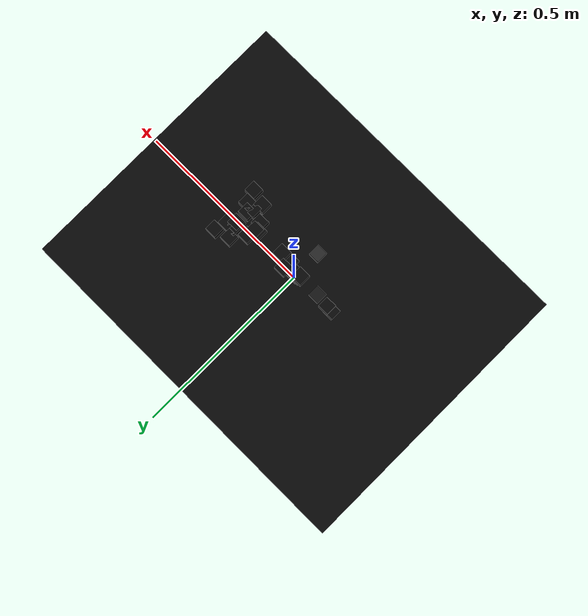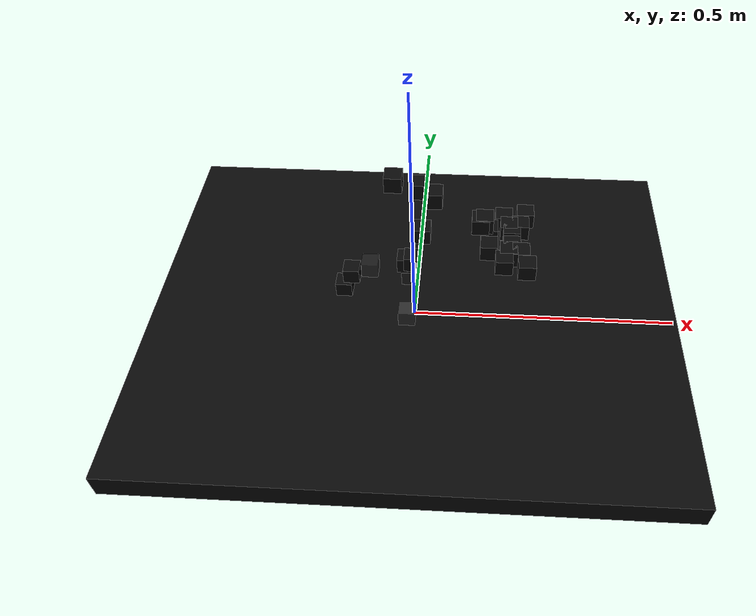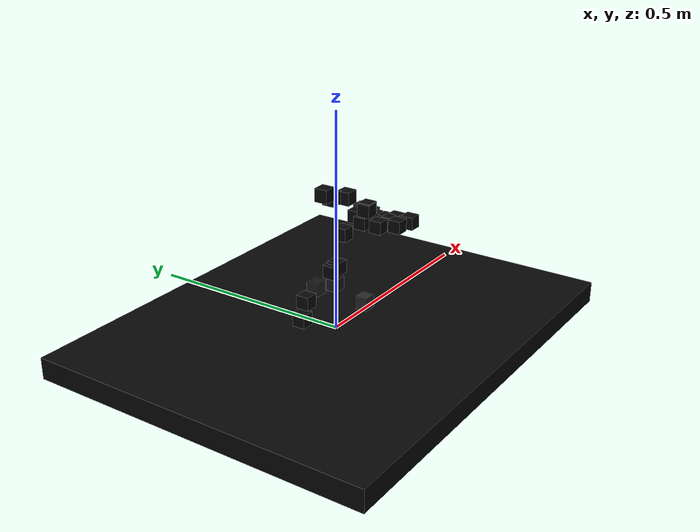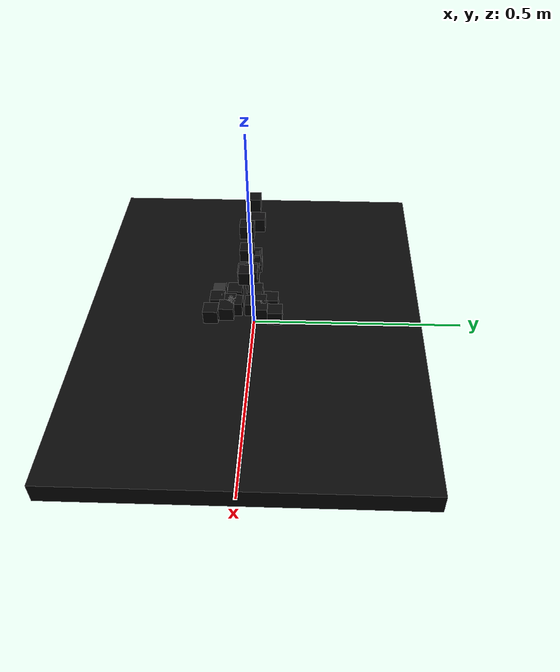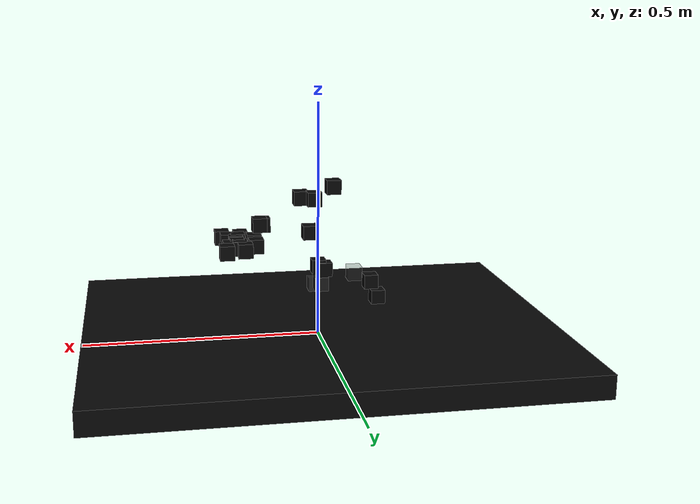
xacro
<?xml version="1.0"?>
<robot name="ep_novis" xmlns:xacro="http://playerstage.sourceforge.net/gazebo/xmlschema/#xacro">
  <xacro:arg name="config_path" default=""/>

  <!-- ================= 材料（官方配色） ================= -->
  <material name="armor_plastic"><color rgba="0.2277128 0.2277128 0.2277128 0.8"/></material>
  <material name="chassis"><color rgba="0.0981132 0.0981132 0.0981132 1.0"/></material>
  <material name="cover_plastic"><color rgba="0.2548322 0.2548322 0.2548322 0.3"/></material>
  <material name="dark_plastic"><color rgba="0.0281746 0.0281746 0.0281746 1.0"/></material>
  <material name="metal"><color rgba="0.0281746 0.028 0.0281746 1.0"/></material>
  <material name="EP_up.001"><color rgba="0.0284811 0.0284811 0.0284811 1.0"/></material>

  <!-- ================= 世界与桌面 ================= -->
  <link name="world"/>
  <link name="table_link">
    <inertial><mass value="10"/><inertia ixx="1" ixy="0" ixz="0" iyy="1" iyz="0" izz="1"/></inertial>
    <visual><geometry><box size="1.0 0.8 0.05"/></geometry><material name="dark_plastic"/></visual>
    <collision><geometry><box size="1.0 0.8 0.05"/></geometry></collision>
  </link>
  <joint name="table_joint" type="fixed">
    <parent link="world"/><child link="table_link"/><origin xyz="0 0 0" rpy="0 0 0"/>
  </joint>

  <!-- ================= EP 底盘（底盘回转关节） ================= -->
  <joint name="chassis_yaw_joint" type="continuous">
    <parent link="table_link"/><child link="base_link"/>
    <origin xyz="0 0 0.025" rpy="0 0 0"/><axis xyz="0 0 1"/>
    <limit effort="4" velocity="3.14"/><dynamics damping="1.0"/>
  </joint>
  <link name="base_link"/>

  <link name="chassis_base_link">
    <inertial>
      <origin xyz="-0.0058789 -0.0001128 0.0294307" rpy="0 0 0"/>
      <mass value="1.934"/>
      <inertia ixx="0.01451" ixy="0" ixz="0" iyy="0.00512" iyz="0" izz="0.01759"/>
    </inertial>
    <visual name="armor">
      <origin xyz="-0.0064553 -0.078141 0.0292877" rpy="0 0 0"/>
      <geometry><box size="0.03 0.03 0.03"/></geometry>
      <material name="armor_plastic"/>
    </visual>
    <visual name="battery">
      <origin xyz="-0.130336 -0.0018702 0.0174177" rpy="0 0 0"/>
      <geometry><box size="0.03 0.03 0.03"/></geometry>
      <material name="dark_plastic"/>
    </visual>
    <visual name="chassis">
      <origin xyz="-0.0059039 0.0004154 0.0527955" rpy="0 0 0"/>
      <geometry><box size="0.03 0.03 0.03"/></geometry>
      <material name="chassis"/>
    </visual>
    <visual name="controller">
      <origin xyz="-0.1142288 -0.0006716 0.052675" rpy="0 0 0"/>
      <geometry><box size="0.03 0.03 0.03"/></geometry>
      <material name="dark_plastic"/>
    </visual>
    <visual name="controller_cover">
      <origin xyz="-0.0787757 -0.002522 0.0720827" rpy="0 0 0"/>
      <geometry><box size="0.03 0.03 0.03"/></geometry>
      <material name="cover_plastic"/>
    </visual>
    <collision name="base_collision">
      <origin xyz="-0.0058789 -0.0001128 0.0294307" rpy="0 0 0"/>
      <geometry><mesh filename="package://robomaster_description/meshes/base_collision.dae" scale="1.0 1.0 1.0"/></geometry>
    </collision>
  </link>
  <joint name="chassis_base_joint" type="fixed">
    <origin xyz="0 0 0.03465" rpy="0 0 0"/>
    <parent link="base_link"/><child link="chassis_base_link"/>
  </joint>

  <!-- ================= 臂基座（官方原点） ================= -->
  <joint name="arm_base_joint" type="fixed">
    <origin xyz="0 0.0010384 0.0906477" rpy="0 0 0"/>
    <parent link="chassis_base_link"/><child link="arm_base_link"/>
  </joint>
  <link name="arm_base_link">
    <inertial>
      <origin xyz="0 0 0" rpy="0 0 0"/><mass value="0.3"/>
      <inertia ixx="0.0023" ixy="0" ixz="0" iyy="0.0025" iyz="0" izz="0.00072"/>
    </inertial>
    <visual name="arm_base">
      <origin xyz="-0.0008983 -0.0029745 -2.44e-05" rpy="0 0 0"/>
      <geometry><box size="0.03 0.03 0.03"/></geometry>
      <material name="metal"/>
    </visual>
    <visual name="left_servo">
      <origin xyz="-0.013507 0 -0.0060673" rpy="0 0 0"/>
      <geometry><box size="0.03 0.03 0.03"/></geometry>
      <material name="metal"/>
    </visual>
    <visual name="right_servo">
      <origin xyz="-0.013507 0 -0.0060673" rpy="0 0 0"/>
      <geometry><box size="0.03 0.03 0.03"/></geometry>
      <material name="metal"/>
    </visual>
    <collision name="arm_base_collision">
      <origin xyz="-0.002098 -0.0004909 0.0073523" rpy="0 0 0"/>
      <geometry><mesh filename="package://robomaster_description/meshes/arm_base_collision.dae" scale="1.0 1.0 1.0"/></geometry>
    </collision>
  </link>

  <!-- ================= 肩关节 arm_1（官方原点与限位） ================= -->
  <joint name="arm_1_joint" type="revolute">
    <origin xyz="0.0103961 -0.0255713 0.030741" rpy="0 0 0"/>
    <parent link="arm_base_link"/><child link="arm_1_link"/>
    <axis xyz="0.0 1.0 0"/>
    <limit effort="6" velocity="3" lower="-0.274" upper="1.384"/>
    <dynamics damping="1.0"/>
  </joint>
  <link name="arm_1_link">
    <inertial>
      <origin xyz="-0.0005586 0.023592 0.0011729" rpy="0 0 0"/>
      <mass value="0.056"/>
      <inertia ixx="0.0156113" ixy="2.43e-05" ixz="1.8e-06" iyy="0.0161553" iyz="-0.0023011" izz="0.0018092"/>
    </inertial>
    <visual name="arm_1">
      <origin xyz="0.0073108 0.0184816 0.0437162" rpy="0 0 0"/>
      <geometry><box size="0.03 0.03 0.03"/></geometry>
      <material name="metal"/>
    </visual>
    <visual name="arm_1_cylinder">
      <origin xyz="-0.0239031 0.0255713 -0.0368083" rpy="0 0 0"/>
      <geometry><box size="0.03 0.03 0.03"/></geometry>
      <material name="metal"/>
    </visual>
    <collision name="arm_1_collision">
      <origin xyz="0.0065116 0.0213649 0.0639448" rpy="0 0 0"/>
      <geometry><mesh filename="package://robomaster_description/meshes/arm_1_collision.dae" scale="1.0 1.0 1.0"/></geometry>
    </collision>
  </link>

  <!-- ================= 肘关节 arm_2（官方原点，限位由 rod_3 折算） ================= -->
  <joint name="arm_2_joint" type="revolute">
    <origin xyz="0.0018704 0.0438659 0.1210238" rpy="0 0 0"/>
    <parent link="arm_1_link"/><child link="arm_2_link"/>
    <axis xyz="0.0 1.0 0"/>
    <limit effort="6" velocity="3" lower="-1.25" upper="0.40"/>
    <dynamics damping="1.0"/>
  </joint>
  <link name="arm_2_link">
    <inertial>
      <origin xyz="0.0222614 -0.0202749 -0.008504" rpy="0 0 0"/>
      <mass value="0.08"/>
      <inertia ixx="0.0118624" ixy="1e-06" ixz="-3e-07" iyy="0.0041691" iyz="0.0031106" izz="0.0101456"/>
    </inertial>
    <visual name="arm_2">
      <origin xyz="0.0256122 -0.020134 -0.001308" rpy="0 0 0"/>
      <geometry><box size="0.03 0.03 0.03"/></geometry>
      <material name="dark_plastic"/>
    </visual>
    <visual name="arm_2_bar_1">
      <origin xyz="7.62e-05 0.0010863 -0.0002509" rpy="0 0 0"/>
      <geometry><box size="0.03 0.03 0.03"/></geometry>
      <material name="metal"/>
    </visual>
    <visual name="arm_2_bar_2">
      <origin xyz="-0.0423232 -0.0099192 0.0221971" rpy="0 0 0"/>
      <geometry><box size="0.03 0.03 0.03"/></geometry>
      <material name="metal"/>
    </visual>
    <collision name="arm_2_collision">
      <origin xyz="0.0222614 -0.0202749 -0.008504" rpy="0 0 0"/>
      <geometry><mesh filename="package://robomaster_description/meshes/arm_2_collision.dae" scale="1.0 1.0 1.0"/></geometry>
    </collision>
  </link>

  <!-- ================= 末端括架（软件补偿保持水平） ================= -->
  <joint name="endpoint_bracket_joint" type="continuous">
    <origin xyz="0.1058557 0.006752 -0.0561093" rpy="0 0 0"/>
    <parent link="arm_2_link"/><child link="endpoint_bracket_link"/>
    <axis xyz="0.0 1.0 0"/>
    <limit effort="6" velocity="3"/><dynamics damping="1.0"/>
  </joint>
  <link name="endpoint_bracket_link">
    <inertial>
      <origin xyz="0.0116468 -0.0288044 0.0041342" rpy="0 0 0"/>
      <mass value="0.028"/>
      <inertia ixx="0.0004413" ixy="0.0001147" ixz="2.69e-05" iyy="0.0008301" iyz="-2.89e-05" izz="0.0008237"/>
    </inertial>
    <visual name="endpoint_bracket">
      <origin xyz="0.0071657 -0.0245846 0.0008407" rpy="0 0 0"/>
      <geometry><box size="0.03 0.03 0.03"/></geometry>
      <material name="metal"/>
    </visual>
    <collision name="endpoint_bracket_collision">
      <origin xyz="0.0116468 -0.0288044 0.0041342" rpy="0 0 0"/>
      <geometry><mesh filename="package://robomaster_description/meshes/endpoint_bracket_collision.dae" scale="1.0 1.0 1.0"/></geometry>
    </collision>
  </link>

  <!-- ================= 机械爪基座（官方） ================= -->
  <joint name="gripper_base_joint" type="fixed">
    <origin xyz="0.0002793 -0.027026 0.0001815" rpy="0 0 0"/>
    <parent link="endpoint_bracket_link"/><child link="gripper_link"/>
  </joint>
  <link name="gripper_link">
    <inertial>
      <origin xyz="0.0326578 -9.78e-05 -0.0327003" rpy="0 0 0"/>
      <mass value="0.15"/>
      <inertia ixx="0.0001376" ixy="7.89e-05" ixz="1.5e-06" iyy="0.0002582" iyz="2.9e-06" izz="0.0002497"/>
    </inertial>
    <visual name="gripper_base">
      <geometry><box size="0.03 0.03 0.03"/></geometry>
      <material name="EP_up.001"/>
    </visual>
    <collision name="gripper_base_collision">
      <origin xyz="0.0003688 -9.78e-05 -0.0112797" rpy="0 0 0"/>
      <geometry><mesh filename="package://robomaster_description/meshes/gripper_base_collision.dae" scale="1.0 1.0 1.0"/></geometry>
    </collision>
  </link>

  <!-- TCP（官方 gripper_t_link，用于 IK 与状态上报） -->
  <joint name="gripper_joint_t" type="fixed">
    <origin xyz="0.124 0 -0.039" rpy="0 0 0"/>
    <parent link="gripper_link"/><child link="gripper_t_link"/>
  </joint>
  <link name="gripper_t_link"/>

  <!-- ================= 左指（指根旋转，指身官方姿势刚性合并） ================= -->
  <joint name="gripper_left_joint" type="revolute">
    <origin xyz="0.0163032 0.0212032 -0.0399201" rpy="0 0 0"/>
    <parent link="gripper_link"/><child link="left_gripper_link_1"/>
    <axis xyz="0 0 1.0"/>
    <limit effort="1.2" velocity="2" lower="-0.32" upper="0.45"/>
    <dynamics damping="0.05"/>
  </joint>
  <link name="left_gripper_link_1">
    <inertial><mass value="0.001"/><inertia ixx="0.001" ixy="0" ixz="0" iyy="0.001" iyz="0" izz="0.001"/></inertial>
    <visual name="left_gripper_1">
      <origin xyz="-1.52e-05 8.12e-05 -2.25e-05" rpy="0 0 0"/>
      <geometry><box size="0.03 0.03 0.03"/></geometry>
      <material name="EP_up.001"/>
    </visual>
  </link>
  <joint name="left_gripper_joint_2" type="fixed">
    <origin xyz="0.0213495 0.0130363 0" rpy="0 0 0"/>
    <parent link="left_gripper_link_1"/><child link="left_gripper_link_2"/>
  </joint>
  <link name="left_gripper_link_2">
    <inertial><mass value="0.002"/><inertia ixx="0.001" ixy="0" ixz="0" iyy="0.001" iyz="0" izz="0.001"/></inertial>
    <visual name="left_gripper_2">
      <origin xyz="0.0135565 -0.0033557 -2.25e-05" rpy="0 0 0"/>
      <geometry><box size="0.03 0.03 0.03"/></geometry>
      <material name="EP_up.001"/>
    </visual>
    <collision name="left_gripper_2_collision">
      <origin xyz="0.0136108 -0.003318 -0.0296613" rpy="0 0 0"/>
      <geometry><mesh filename="package://robomaster_description/meshes/gripper_left_2_collision.dae" scale="1.0 1.0 1.0"/></geometry>
    </collision>
  </link>
  <joint name="left_gripper_joint_4" type="fixed">
    <origin xyz="0.00485 0.0204148 -5.8e-06" rpy="0 0 0"/>
    <parent link="left_gripper_link_2"/><child link="left_gripper_link_4"/>
  </joint>
  <link name="left_gripper_link_4">
    <inertial><mass value="0.002"/><inertia ixx="0.001" ixy="0" ixz="0" iyy="0.001" iyz="0" izz="0.001"/></inertial>
    <visual name="left_gripper_4">
      <origin xyz="-4.74e-05 0.0001737 -1.67e-05" rpy="0 0 0"/>
      <geometry><box size="0.03 0.03 0.03"/></geometry>
      <material name="EP_up.001"/>
    </visual>
    <collision name="left_gripper_4_collision">
      <origin xyz="-7.56e-05 -2.97e-05 -0.0296554" rpy="0 0 0"/>
      <geometry><mesh filename="package://robomaster_description/meshes/gripper_left_4_collision.dae" scale="1.0 1.0 1.0"/></geometry>
    </collision>
  </link>
  <joint name="left_gripper_joint_5" type="fixed">
    <origin xyz="0.0385916 0.0103143 1.6e-06" rpy="0 0 0"/>
    <parent link="left_gripper_link_4"/><child link="left_gripper_link_5"/>
  </joint>
  <link name="left_gripper_link_5">
    <inertial><mass value="0.002"/><inertia ixx="0.001" ixy="0" ixz="0" iyy="0.001" iyz="0" izz="0.001"/></inertial>
    <visual name="left_gripper_5">
      <origin xyz="-7.26e-05 -1.8e-06 -1.83e-05" rpy="0 0 0"/>
      <geometry><box size="0.03 0.03 0.03"/></geometry>
      <material name="EP_up.001"/>
    </visual>
    <collision name="left_gripper_5_collision">
      <origin xyz="-7.26e-05 -1.8e-06 -1.83e-05" rpy="0 0 0"/>
      <geometry><mesh filename="package://robomaster_description/meshes/gripper_left_5_collision.dae" scale="1.0 1.0 1.0"/></geometry>
    </collision>
  </link>
  <joint name="left_gripper_joint_6" type="fixed">
    <origin xyz="0.0051144 -0.0140851 0" rpy="0 0 0"/>
    <parent link="left_gripper_link_5"/><child link="left_gripper_link_6"/>
  </joint>
  <link name="left_gripper_link_6">
    <inertial><mass value="0.002"/><inertia ixx="0.001" ixy="0" ixz="0" iyy="0.001" iyz="0" izz="0.001"/></inertial>
    <visual name="left_gripper_6">
      <origin xyz="-0.0149194 -0.0168522 -1.83e-05" rpy="0 0 0"/>
      <geometry><box size="0.03 0.03 0.03"/></geometry>
      <material name="EP_up.001"/>
    </visual>
    <collision name="left_gripper_6_collision">
      <origin xyz="-0.0149892 -0.0167532 -0.0001821" rpy="0 0 0"/>
      <geometry><mesh filename="package://robomaster_description/meshes/gripper_left_6_collision.dae" scale="1.0 1.0 1.0"/></geometry>
    </collision>
  </link>
  <joint name="left_gripper_joint_7" type="fixed">
    <origin xyz="-0.0148823 -0.0168513 0" rpy="0 0 0"/>
    <parent link="left_gripper_link_6"/><child link="left_gripper_link_7"/>
  </joint>
  <link name="left_gripper_link_7">
    <inertial><mass value="0.002"/><inertia ixx="0.001" ixy="0" ixz="0" iyy="0.001" iyz="0" izz="0.001"/></inertial>
    <visual name="left_gripper_7">
      <origin xyz="-0.0153264 -0.0166317 -1.83e-05" rpy="0 0 0"/>
      <geometry><box size="0.03 0.03 0.03"/></geometry>
      <material name="EP_up.001"/>
    </visual>
    <collision name="left_gripper_collision">
      <origin xyz="-0.0149126 -0.0167727 -0.0296388" rpy="0 0 0"/>
      <geometry><mesh filename="package://robomaster_description/meshes/gripper_left_collision.dae" scale="1.0 1.0 1.0"/></geometry>
    </collision>
  </link>

  <!-- ================= 右指（镜像） ================= -->
  <joint name="gripper_right_joint" type="revolute">
    <origin xyz="0.0163034 -0.0209781 -0.0399201" rpy="0 0 0"/>
    <parent link="gripper_link"/><child link="right_gripper_link_1"/>
    <axis xyz="0 0 1.0"/>
    <limit effort="1.2" velocity="2" lower="-0.32" upper="0.45"/>
    <dynamics damping="0.05"/>
  </joint>
  <link name="right_gripper_link_1">
    <inertial><mass value="0.001"/><inertia ixx="0.001" ixy="0" ixz="0" iyy="0.001" iyz="0" izz="0.001"/></inertial>
    <visual name="right_gripper_1">
      <origin xyz="-1.52e-05 -8.12e-05 -2.25e-05" rpy="0 0 0"/>
      <geometry><box size="0.03 0.03 0.03"/></geometry>
      <material name="EP_up.001"/>
    </visual>
  </link>
  <joint name="right_gripper_joint_2" type="fixed">
    <origin xyz="0.0213495 -0.0130363 0" rpy="0 0 0"/>
    <parent link="right_gripper_link_1"/><child link="right_gripper_link_2"/>
  </joint>
  <link name="right_gripper_link_2">
    <inertial><mass value="0.002"/><inertia ixx="0.001" ixy="0" ixz="0" iyy="0.001" iyz="0" izz="0.001"/></inertial>
    <visual name="right_gripper_2">
      <origin xyz="0.0127099 0.0021056 -2.25e-05" rpy="0 0 0"/>
      <geometry><box size="0.03 0.03 0.03"/></geometry>
      <material name="EP_up.001"/>
    </visual>
    <collision name="right_gripper_2_collision">
      <origin xyz="0.0134077 0.0024401 -0.0296613" rpy="0 0 0"/>
      <geometry><mesh filename="package://robomaster_description/meshes/right_gripper_2_collision.dae" scale="1.0 1.0 1.0"/></geometry>
    </collision>
  </link>
  <joint name="right_gripper_joint_4" type="fixed">
    <origin xyz="0.0047151 -0.0208481 -5.8e-06" rpy="0 0 0"/>
    <parent link="right_gripper_link_2"/><child link="right_gripper_link_4"/>
  </joint>
  <link name="right_gripper_link_4">
    <inertial><mass value="0.002"/><inertia ixx="0.001" ixy="0" ixz="0" iyy="0.001" iyz="0" izz="0.001"/></inertial>
    <visual name="right_gripper_4">
      <origin xyz="-4.74e-05 -0.0001737 -1.67e-05" rpy="0 0 0"/>
      <geometry><box size="0.03 0.03 0.03"/></geometry>
      <material name="EP_up.001"/>
    </visual>
    <collision name="right_gripper_4_collision">
      <origin xyz="-6.57e-05 1.16e-05 -0.0296554" rpy="0 0 0"/>
      <geometry><mesh filename="package://robomaster_description/meshes/right_gripper_4_collision.dae" scale="1.0 1.0 1.0"/></geometry>
    </collision>
  </link>
  <joint name="right_gripper_joint_5" type="fixed">
    <origin xyz="0.0385916 -0.0103143 1.6e-06" rpy="0 0 0"/>
    <parent link="right_gripper_link_4"/><child link="right_gripper_link_5"/>
  </joint>
  <link name="right_gripper_link_5">
    <inertial><mass value="0.002"/><inertia ixx="0.001" ixy="0" ixz="0" iyy="0.001" iyz="0" izz="0.001"/></inertial>
    <visual name="right_gripper_5">
      <origin xyz="-7.26e-05 1.7e-06 -1.83e-05" rpy="0 0 0"/>
      <geometry><box size="0.03 0.03 0.03"/></geometry>
      <material name="EP_up.001"/>
    </visual>
    <collision name="right_gripper_5_collision">
      <origin xyz="-0.0001606 2.35e-05 8.1e-05" rpy="0 0 0"/>
      <geometry><mesh filename="package://robomaster_description/meshes/right_gripper_5_collision.dae" scale="1.0 1.0 1.0"/></geometry>
    </collision>
  </link>
  <joint name="right_gripper_joint_6" type="fixed">
    <origin xyz="0.0059278 0.0133069 0" rpy="0 0 0"/>
    <parent link="right_gripper_link_5"/><child link="right_gripper_link_6"/>
  </joint>
  <link name="right_gripper_link_6">
    <inertial><mass value="0.002"/><inertia ixx="0.001" ixy="0" ixz="0" iyy="0.001" iyz="0" izz="0.001"/></inertial>
    <visual name="right_gripper_6">
      <origin xyz="-0.03103 0.0338258 -1.83e-05" rpy="0 0 0"/>
      <geometry><box size="0.03 0.03 0.03"/></geometry>
      <material name="EP_up.001"/>
    </visual>
    <collision name="right_gripper_6_collision">
      <origin xyz="-0.0156676 0.0173828 6.82e-05" rpy="0 0 0"/>
      <geometry><mesh filename="package://robomaster_description/meshes/right_gripper_6_collision.dae" scale="1.0 1.0 1.0"/></geometry>
    </collision>
  </link>
  <joint name="right_gripper_joint_7" type="fixed">
    <origin xyz="-0.0156955 0.0176295 0" rpy="0 0 0"/>
    <parent link="right_gripper_link_6"/><child link="right_gripper_link_7"/>
  </joint>
  <link name="right_gripper_link_7">
    <inertial><mass value="0.002"/><inertia ixx="0.001" ixy="0" ixz="0" iyy="0.001" iyz="0" izz="0.001"/></inertial>
    <visual name="right_gripper_7">
      <origin xyz="-3.72e-05 9e-07 -1.83e-05" rpy="0 0 0"/>
      <geometry><box size="0.03 0.03 0.03"/></geometry>
      <material name="EP_up.001"/>
    </visual>
    <collision name="right_gripper_collision">
      <origin xyz="-0.0150056 0.0168496 -0.0296388" rpy="0 0 0"/>
      <geometry><mesh filename="package://robomaster_description/meshes/right_gripper_7_collision.dae" scale="1.0 1.0 1.0"/></geometry>
    </collision>
  </link>

  <!-- ================= gazebo 表面与 ros2_control ================= -->
  <gazebo reference="table_link">
    <mu1>1.0</mu1><mu2>1.0</mu2><kp>1e6</kp><kd>1</kd><minDepth>0.00001</minDepth>
  </gazebo>
  <gazebo reference="left_gripper_link_2"><mu1>1.2</mu1><mu2>1.2</mu2><kp>1e6</kp><kd>1</kd><minDepth>0.00001</minDepth></gazebo>
  <gazebo reference="left_gripper_link_4"><mu1>1.2</mu1><mu2>1.2</mu2><kp>1e6</kp><kd>1</kd><minDepth>0.00001</minDepth></gazebo>
  <gazebo reference="left_gripper_link_5"><mu1>1.2</mu1><mu2>1.2</mu2><kp>1e6</kp><kd>1</kd><minDepth>0.00001</minDepth></gazebo>
  <gazebo reference="left_gripper_link_6"><mu1>1.2</mu1><mu2>1.2</mu2><kp>1e6</kp><kd>1</kd><minDepth>0.00001</minDepth></gazebo>
  <gazebo reference="left_gripper_link_7"><mu1>1.2</mu1><mu2>1.2</mu2><kp>1e6</kp><kd>1</kd><minDepth>0.00001</minDepth></gazebo>
  <gazebo reference="right_gripper_link_2"><mu1>1.2</mu1><mu2>1.2</mu2><kp>1e6</kp><kd>1</kd><minDepth>0.00001</minDepth></gazebo>
  <gazebo reference="right_gripper_link_4"><mu1>1.2</mu1><mu2>1.2</mu2><kp>1e6</kp><kd>1</kd><minDepth>0.00001</minDepth></gazebo>
  <gazebo reference="right_gripper_link_5"><mu1>1.2</mu1><mu2>1.2</mu2><kp>1e6</kp><kd>1</kd><minDepth>0.00001</minDepth></gazebo>
  <gazebo reference="right_gripper_link_6"><mu1>1.2</mu1><mu2>1.2</mu2><kp>1e6</kp><kd>1</kd><minDepth>0.00001</minDepth></gazebo>
  <gazebo reference="right_gripper_link_7"><mu1>1.2</mu1><mu2>1.2</mu2><kp>1e6</kp><kd>1</kd><minDepth>0.00001</minDepth></gazebo>

  <gazebo>
    <plugin filename="libgazebo_ros2_control.so" name="gazebo_ros2_control">
      <ros><node_name>arm_gazebo_ros2_control</node_name></ros>
      <parameters>$(arg config_path)</parameters>
      <robot_param>robot_description</robot_param>
      <robot_param_node>robot_state_publisher</robot_param_node>
    </plugin>
  </gazebo>

  <ros2_control name="ep_system" type="system">
    <hardware><plugin>gazebo_ros2_control/GazeboSystem</plugin></hardware>
    <joint name="chassis_yaw_joint"><command_interface name="velocity"/><state_interface name="position"/><state_interface name="velocity"/></joint>
    <joint name="arm_1_joint"><command_interface name="velocity"/><state_interface name="position"/><state_interface name="velocity"/></joint>
    <joint name="arm_2_joint"><command_interface name="velocity"/><state_interface name="position"/><state_interface name="velocity"/></joint>
    <joint name="endpoint_bracket_joint"><command_interface name="velocity"/><state_interface name="position"/><state_interface name="velocity"/></joint>
    <joint name="gripper_left_joint"><command_interface name="effort"/><state_interface name="position"/><state_interface name="velocity"/></joint>
    <joint name="gripper_right_joint"><command_interface name="effort"/><state_interface name="position"/><state_interface name="velocity"/></joint>
  </ros2_control>
</robot>
